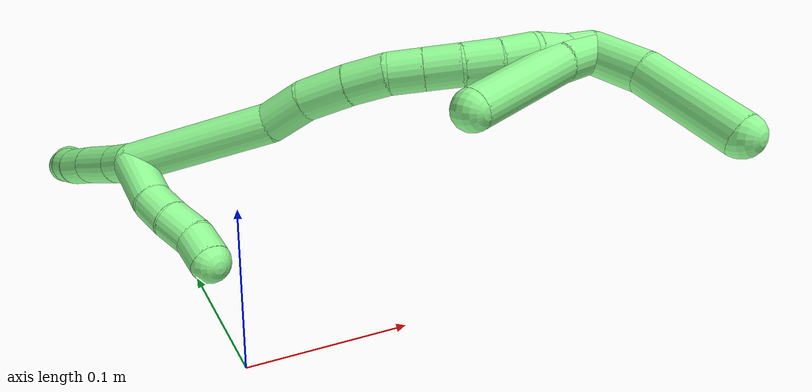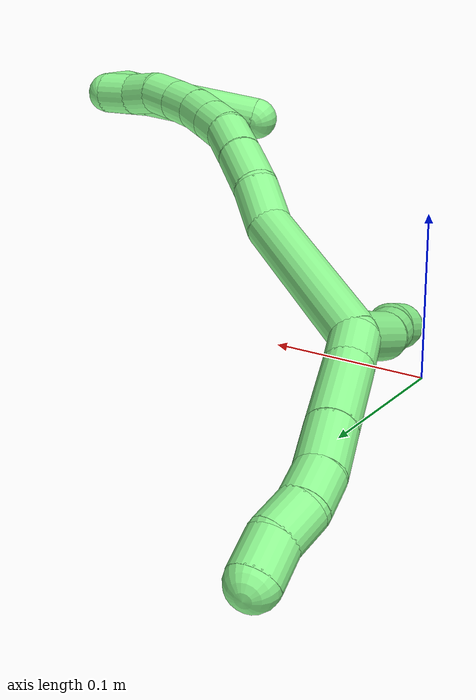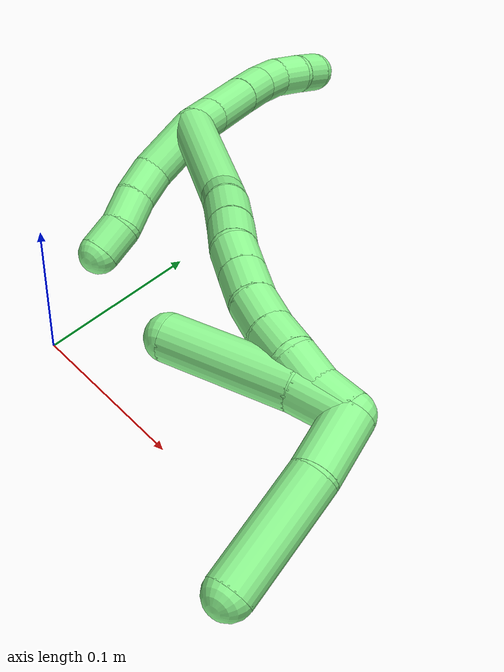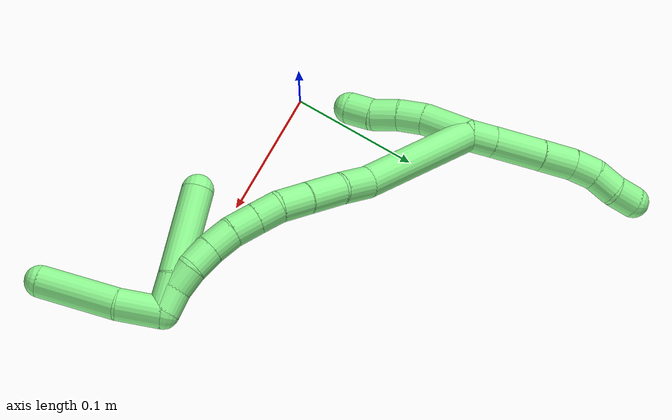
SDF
<sdf version="1.7">
 <world name="default">
  <model name="13">
   <static>0</static>
   <link name="13">
    <collision name="collision-cylinder-e_1_2_8">
     <pose>-0.002612 -0.000916 -0.010062 3.05085 -0.252966 -2.4557</pose>
     <geometry><cylinder><radius>0.0125</radius><length>0.020871</length></cylinder></geometry>
     <surface>
      <friction><ode><mu>1.16</mu><mu2>1.16</mu2><slip1>0</slip1><slip2>0</slip2></ode></friction>
      <contact><ode><kp>1e+06</kp><kd>1</kd><max_vel>0</max_vel><min_depth>0.001</min_depth></ode></contact>
     </surface>
    </collision>
    <visual name="visual-cylinder-e_1_2_8">
     <pose>-0.002612 -0.000916 -0.010062 3.05085 -0.252966 -2.4557</pose>
     <geometry><cylinder><radius>0.0125</radius><length>0.020871</length></cylinder></geometry>
     <material><ambient>0.564706 0.984314 0.572549 1</ambient></material>
    </visual>
    <collision name="collision-cylinder-e_2_8_9">
     <pose>-0.00967 -0.003464 -0.040232 3.06057 -0.216955 -2.429</pose>
     <geometry><cylinder><radius>0.0125</radius><length>0.041319</length></cylinder></geometry>
     <surface>
      <friction><ode><mu>1.16</mu><mu2>1.16</mu2><slip1>0</slip1><slip2>0</slip2></ode></friction>
      <contact><ode><kp>1e+06</kp><kd>1</kd><max_vel>0</max_vel><min_depth>0.001</min_depth></ode></contact>
     </surface>
    </collision>
    <visual name="visual-cylinder-e_2_8_9">
     <pose>-0.00967 -0.003464 -0.040232 3.06057 -0.216955 -2.429</pose>
     <geometry><cylinder><radius>0.0125</radius><length>0.041319</length></cylinder></geometry>
     <material><ambient>0.564706 0.984314 0.572549 1</ambient></material>
    </visual>
    <collision name="collision-cylinder-e_3_9_10">
     <pose>-0.017392 -0.006448 -0.073606 3.04006 -0.240822 -2.34649</pose>
     <geometry><cylinder><radius>0.0125</radius><length>0.027459</length></cylinder></geometry>
     <surface>
      <friction><ode><mu>1.16</mu><mu2>1.16</mu2><slip1>0</slip1><slip2>0</slip2></ode></friction>
      <contact><ode><kp>1e+06</kp><kd>1</kd><max_vel>0</max_vel><min_depth>0.001</min_depth></ode></contact>
     </surface>
    </collision>
    <visual name="visual-cylinder-e_3_9_10">
     <pose>-0.017392 -0.006448 -0.073606 3.04006 -0.240822 -2.34649</pose>
     <geometry><cylinder><radius>0.0125</radius><length>0.027459</length></cylinder></geometry>
     <material><ambient>0.564706 0.984314 0.572549 1</ambient></material>
    </visual>
    <collision name="collision-cylinder-e_4_10_11">
     <pose>-0.021658 -0.009524 -0.096785 2.96935 -0.098235 -1.03521</pose>
     <geometry><cylinder><radius>0.0125</radius><length>0.020224</length></cylinder></geometry>
     <surface>
      <friction><ode><mu>1.16</mu><mu2>1.16</mu2><slip1>0</slip1><slip2>0</slip2></ode></friction>
      <contact><ode><kp>1e+06</kp><kd>1</kd><max_vel>0</max_vel><min_depth>0.001</min_depth></ode></contact>
     </surface>
    </collision>
    <visual name="visual-cylinder-e_4_10_11">
     <pose>-0.021658 -0.009524 -0.096785 2.96935 -0.098235 -1.03521</pose>
     <geometry><cylinder><radius>0.0125</radius><length>0.020224</length></cylinder></geometry>
     <material><ambient>0.564706 0.984314 0.572549 1</ambient></material>
    </visual>
    <collision name="collision-cylinder-e_5_11_12">
     <pose>-0.021896 -0.014965 -0.116014 2.76201 0.075012 0.385805</pose>
     <geometry><cylinder><radius>0.0125</radius><length>0.020115</length></cylinder></geometry>
     <surface>
      <friction><ode><mu>1.16</mu><mu2>1.16</mu2><slip1>0</slip1><slip2>0</slip2></ode></friction>
      <contact><ode><kp>1e+06</kp><kd>1</kd><max_vel>0</max_vel><min_depth>0.001</min_depth></ode></contact>
     </surface>
    </collision>
    <visual name="visual-cylinder-e_5_11_12">
     <pose>-0.021896 -0.014965 -0.116014 2.76201 0.075012 0.385805</pose>
     <geometry><cylinder><radius>0.0125</radius><length>0.020115</length></cylinder></geometry>
     <material><ambient>0.564706 0.984314 0.572549 1</ambient></material>
    </visual>
    <collision name="collision-cylinder-e_6_12_6">
     <pose>-0.023018 -0.022024 -0.134573 2.79462 -0.188539 -0.989522</pose>
     <geometry><cylinder><radius>0.0125</radius><length>0.020012</length></cylinder></geometry>
     <surface>
      <friction><ode><mu>1.16</mu><mu2>1.16</mu2><slip1>0</slip1><slip2>0</slip2></ode></friction>
      <contact><ode><kp>1e+06</kp><kd>1</kd><max_vel>0</max_vel><min_depth>0.001</min_depth></ode></contact>
     </surface>
    </collision>
    <visual name="visual-cylinder-e_6_12_6">
     <pose>-0.023018 -0.022024 -0.134573 2.79462 -0.188539 -0.989522</pose>
     <geometry><cylinder><radius>0.0125</radius><length>0.020012</length></cylinder></geometry>
     <material><ambient>0.564706 0.984314 0.572549 1</ambient></material>
    </visual>
    <collision name="collision-cylinder-e_1_2_13">
     <pose>-0.007535 -0.003783 0.016887 0.220361 -0.410664 -0.046072</pose>
     <geometry><cylinder><radius>0.0125</radius><length>0.037749</length></cylinder></geometry>
     <surface>
      <friction><ode><mu>1.16</mu><mu2>1.16</mu2><slip1>0</slip1><slip2>0</slip2></ode></friction>
      <contact><ode><kp>1e+06</kp><kd>1</kd><max_vel>0</max_vel><min_depth>0.001</min_depth></ode></contact>
     </surface>
    </collision>
    <visual name="visual-cylinder-e_1_2_13">
     <pose>-0.007535 -0.003783 0.016887 0.220361 -0.410664 -0.046072</pose>
     <geometry><cylinder><radius>0.0125</radius><length>0.037749</length></cylinder></geometry>
     <material><ambient>0.564706 0.984314 0.572549 1</ambient></material>
    </visual>
    <collision name="collision-cylinder-e_2_13_14">
     <pose>-0.016968 -0.010614 0.043526 0.303034 -0.183708 -0.028127</pose>
     <geometry><cylinder><radius>0.0125</radius><length>0.020786</length></cylinder></geometry>
     <surface>
      <friction><ode><mu>1.16</mu><mu2>1.16</mu2><slip1>0</slip1><slip2>0</slip2></ode></friction>
      <contact><ode><kp>1e+06</kp><kd>1</kd><max_vel>0</max_vel><min_depth>0.001</min_depth></ode></contact>
     </surface>
    </collision>
    <visual name="visual-cylinder-e_2_13_14">
     <pose>-0.016968 -0.010614 0.043526 0.303034 -0.183708 -0.028127</pose>
     <geometry><cylinder><radius>0.0125</radius><length>0.020786</length></cylinder></geometry>
     <material><ambient>0.564706 0.984314 0.572549 1</ambient></material>
    </visual>
    <collision name="collision-cylinder-e_3_14_15">
     <pose>-0.020162 -0.018042 0.062848 0.429084 -0.122417 -0.026706</pose>
     <geometry><cylinder><radius>0.0125</radius><length>0.021206</length></cylinder></geometry>
     <surface>
      <friction><ode><mu>1.16</mu><mu2>1.16</mu2><slip1>0</slip1><slip2>0</slip2></ode></friction>
      <contact><ode><kp>1e+06</kp><kd>1</kd><max_vel>0</max_vel><min_depth>0.001</min_depth></ode></contact>
     </surface>
    </collision>
    <visual name="visual-cylinder-e_3_14_15">
     <pose>-0.020162 -0.018042 0.062848 0.429084 -0.122417 -0.026706</pose>
     <geometry><cylinder><radius>0.0125</radius><length>0.021206</length></cylinder></geometry>
     <material><ambient>0.564706 0.984314 0.572549 1</ambient></material>
    </visual>
    <collision name="collision-cylinder-e_4_15_5">
     <pose>-0.025033 -0.024976 0.081544 0.273048 -0.360826 -0.050104</pose>
     <geometry><cylinder><radius>0.0125</radius><length>0.020259</length></cylinder></geometry>
     <surface>
      <friction><ode><mu>1.16</mu><mu2>1.16</mu2><slip1>0</slip1><slip2>0</slip2></ode></friction>
      <contact><ode><kp>1e+06</kp><kd>1</kd><max_vel>0</max_vel><min_depth>0.001</min_depth></ode></contact>
     </surface>
    </collision>
    <visual name="visual-cylinder-e_4_15_5">
     <pose>-0.025033 -0.024976 0.081544 0.273048 -0.360826 -0.050104</pose>
     <geometry><cylinder><radius>0.0125</radius><length>0.020259</length></cylinder></geometry>
     <material><ambient>0.564706 0.984314 0.572549 1</ambient></material>
    </visual>
    <collision name="collision-cylinder-e_1_2_16">
     <pose>0.030775 -0.015791 0.032788 0.448837 0.701949 0.166762</pose>
     <geometry><cylinder><radius>0.0125</radius><length>0.09532</length></cylinder></geometry>
     <surface>
      <friction><ode><mu>1.16</mu><mu2>1.16</mu2><slip1>0</slip1><slip2>0</slip2></ode></friction>
      <contact><ode><kp>1e+06</kp><kd>1</kd><max_vel>0</max_vel><min_depth>0.001</min_depth></ode></contact>
     </surface>
    </collision>
    <visual name="visual-cylinder-e_1_2_16">
     <pose>0.030775 -0.015791 0.032788 0.448837 0.701949 0.166762</pose>
     <geometry><cylinder><radius>0.0125</radius><length>0.09532</length></cylinder></geometry>
     <material><ambient>0.564706 0.984314 0.572549 1</ambient></material>
    </visual>
    <collision name="collision-cylinder-e_2_16_17">
     <pose>0.071351 -0.031882 0.075159 0.031177 0.796408 0.013117</pose>
     <geometry><cylinder><radius>0.0125</radius><length>0.027423</length></cylinder></geometry>
     <surface>
      <friction><ode><mu>1.16</mu><mu2>1.16</mu2><slip1>0</slip1><slip2>0</slip2></ode></friction>
      <contact><ode><kp>1e+06</kp><kd>1</kd><max_vel>0</max_vel><min_depth>0.001</min_depth></ode></contact>
     </surface>
    </collision>
    <visual name="visual-cylinder-e_2_16_17">
     <pose>0.071351 -0.031882 0.075159 0.031177 0.796408 0.013117</pose>
     <geometry><cylinder><radius>0.0125</radius><length>0.027423</length></cylinder></geometry>
     <material><ambient>0.564706 0.984314 0.572549 1</ambient></material>
    </visual>
    <collision name="collision-cylinder-e_3_17_18">
     <pose>0.090348 -0.035133 0.095882 0.259107 0.673467 0.091152</pose>
     <geometry><cylinder><radius>0.0125</radius><length>0.029487</length></cylinder></geometry>
     <surface>
      <friction><ode><mu>1.16</mu><mu2>1.16</mu2><slip1>0</slip1><slip2>0</slip2></ode></friction>
      <contact><ode><kp>1e+06</kp><kd>1</kd><max_vel>0</max_vel><min_depth>0.001</min_depth></ode></contact>
     </surface>
    </collision>
    <visual name="visual-cylinder-e_3_17_18">
     <pose>0.090348 -0.035133 0.095882 0.259107 0.673467 0.091152</pose>
     <geometry><cylinder><radius>0.0125</radius><length>0.029487</length></cylinder></geometry>
     <material><ambient>0.564706 0.984314 0.572549 1</ambient></material>
    </visual>
    <collision name="collision-cylinder-e_4_18_19">
     <pose>0.106791 -0.04121 0.116705 0.312058 0.618953 0.100514</pose>
     <geometry><cylinder><radius>0.0125</radius><length>0.024984</length></cylinder></geometry>
     <surface>
      <friction><ode><mu>1.16</mu><mu2>1.16</mu2><slip1>0</slip1><slip2>0</slip2></ode></friction>
      <contact><ode><kp>1e+06</kp><kd>1</kd><max_vel>0</max_vel><min_depth>0.001</min_depth></ode></contact>
     </surface>
    </collision>
    <visual name="visual-cylinder-e_4_18_19">
     <pose>0.106791 -0.04121 0.116705 0.312058 0.618953 0.100514</pose>
     <geometry><cylinder><radius>0.0125</radius><length>0.024984</length></cylinder></geometry>
     <material><ambient>0.564706 0.984314 0.572549 1</ambient></material>
    </visual>
    <collision name="collision-cylinder-e_5_19_20">
     <pose>0.119595 -0.049136 0.133275 0.608931 0.58463 0.188569</pose>
     <geometry><cylinder><radius>0.0125</radius><length>0.020135</length></cylinder></geometry>
     <surface>
      <friction><ode><mu>1.16</mu><mu2>1.16</mu2><slip1>0</slip1><slip2>0</slip2></ode></friction>
      <contact><ode><kp>1e+06</kp><kd>1</kd><max_vel>0</max_vel><min_depth>0.001</min_depth></ode></contact>
     </surface>
    </collision>
    <visual name="visual-cylinder-e_5_19_20">
     <pose>0.119595 -0.049136 0.133275 0.608931 0.58463 0.188569</pose>
     <geometry><cylinder><radius>0.0125</radius><length>0.020135</length></cylinder></geometry>
     <material><ambient>0.564706 0.984314 0.572549 1</ambient></material>
    </visual>
    <collision name="collision-cylinder-e_6_20_21">
     <pose>0.131047 -0.059131 0.147369 0.624412 0.585946 0.194113</pose>
     <geometry><cylinder><radius>0.0125</radius><length>0.021323</length></cylinder></geometry>
     <surface>
      <friction><ode><mu>1.16</mu><mu2>1.16</mu2><slip1>0</slip1><slip2>0</slip2></ode></friction>
      <contact><ode><kp>1e+06</kp><kd>1</kd><max_vel>0</max_vel><min_depth>0.001</min_depth></ode></contact>
     </surface>
    </collision>
    <visual name="visual-cylinder-e_6_20_21">
     <pose>0.131047 -0.059131 0.147369 0.624412 0.585946 0.194113</pose>
     <geometry><cylinder><radius>0.0125</radius><length>0.021323</length></cylinder></geometry>
     <material><ambient>0.564706 0.984314 0.572549 1</ambient></material>
    </visual>
    <collision name="collision-cylinder-e_7_21_22">
     <pose>0.14334 -0.070496 0.160372 0.816701 0.647086 0.288161</pose>
     <geometry><cylinder><radius>0.0125</radius><length>0.021224</length></cylinder></geometry>
     <surface>
      <friction><ode><mu>1.16</mu><mu2>1.16</mu2><slip1>0</slip1><slip2>0</slip2></ode></friction>
      <contact><ode><kp>1e+06</kp><kd>1</kd><max_vel>0</max_vel><min_depth>0.001</min_depth></ode></contact>
     </surface>
    </collision>
    <visual name="visual-cylinder-e_7_21_22">
     <pose>0.14334 -0.070496 0.160372 0.816701 0.647086 0.288161</pose>
     <geometry><cylinder><radius>0.0125</radius><length>0.021224</length></cylinder></geometry>
     <material><ambient>0.564706 0.984314 0.572549 1</ambient></material>
    </visual>
    <collision name="collision-cylinder-e_8_22_23">
     <pose>0.156319 -0.082739 0.1707 0.929728 0.715205 0.370508</pose>
     <geometry><cylinder><radius>0.0125</radius><length>0.020071</length></cylinder></geometry>
     <surface>
      <friction><ode><mu>1.16</mu><mu2>1.16</mu2><slip1>0</slip1><slip2>0</slip2></ode></friction>
      <contact><ode><kp>1e+06</kp><kd>1</kd><max_vel>0</max_vel><min_depth>0.001</min_depth></ode></contact>
     </surface>
    </collision>
    <visual name="visual-cylinder-e_8_22_23">
     <pose>0.156319 -0.082739 0.1707 0.929728 0.715205 0.370508</pose>
     <geometry><cylinder><radius>0.0125</radius><length>0.020071</length></cylinder></geometry>
     <material><ambient>0.564706 0.984314 0.572549 1</ambient></material>
    </visual>
    <collision name="collision-cylinder-e_9_23_24">
     <pose>0.167815 -0.096914 0.178444 1.19332 0.513505 0.352957</pose>
     <geometry><cylinder><radius>0.0125</radius><length>0.020013</length></cylinder></geometry>
     <surface>
      <friction><ode><mu>1.16</mu><mu2>1.16</mu2><slip1>0</slip1><slip2>0</slip2></ode></friction>
      <contact><ode><kp>1e+06</kp><kd>1</kd><max_vel>0</max_vel><min_depth>0.001</min_depth></ode></contact>
     </surface>
    </collision>
    <visual name="visual-cylinder-e_9_23_24">
     <pose>0.167815 -0.096914 0.178444 1.19332 0.513505 0.352957</pose>
     <geometry><cylinder><radius>0.0125</radius><length>0.020013</length></cylinder></geometry>
     <material><ambient>0.564706 0.984314 0.572549 1</ambient></material>
    </visual>
    <collision name="collision-cylinder-e_10_24_1">
     <pose>0.179118 -0.112572 0.183177 1.37222 0.691987 0.574056</pose>
     <geometry><cylinder><radius>0.0125</radius><length>0.020019</length></cylinder></geometry>
     <surface>
      <friction><ode><mu>1.16</mu><mu2>1.16</mu2><slip1>0</slip1><slip2>0</slip2></ode></friction>
      <contact><ode><kp>1e+06</kp><kd>1</kd><max_vel>0</max_vel><min_depth>0.001</min_depth></ode></contact>
     </surface>
    </collision>
    <visual name="visual-cylinder-e_10_24_1">
     <pose>0.179118 -0.112572 0.183177 1.37222 0.691987 0.574056</pose>
     <geometry><cylinder><radius>0.0125</radius><length>0.020019</length></cylinder></geometry>
     <material><ambient>0.564706 0.984314 0.572549 1</ambient></material>
    </visual>
    <collision name="collision-cylinder-e_1_1_25">
     <pose>0.183615 -0.124104 0.201735 0.229271 -0.107551 -0.012395</pose>
     <geometry><cylinder><radius>0.0125</radius><length>0.035196</length></cylinder></geometry>
     <surface>
      <friction><ode><mu>1.16</mu><mu2>1.16</mu2><slip1>0</slip1><slip2>0</slip2></ode></friction>
      <contact><ode><kp>1e+06</kp><kd>1</kd><max_vel>0</max_vel><min_depth>0.001</min_depth></ode></contact>
     </surface>
    </collision>
    <visual name="visual-cylinder-e_1_1_25">
     <pose>0.183615 -0.124104 0.201735 0.229271 -0.107551 -0.012395</pose>
     <geometry><cylinder><radius>0.0125</radius><length>0.035196</length></cylinder></geometry>
     <material><ambient>0.564706 0.984314 0.572549 1</ambient></material>
    </visual>
    <collision name="collision-cylinder-e_2_25_4">
     <pose>0.172233 -0.135575 0.248834 0.244336 -0.297353 -0.036776</pose>
     <geometry><cylinder><radius>0.0125</radius><length>0.064804</length></cylinder></geometry>
     <surface>
      <friction><ode><mu>1.16</mu><mu2>1.16</mu2><slip1>0</slip1><slip2>0</slip2></ode></friction>
      <contact><ode><kp>1e+06</kp><kd>1</kd><max_vel>0</max_vel><min_depth>0.001</min_depth></ode></contact>
     </surface>
    </collision>
    <visual name="visual-cylinder-e_2_25_4">
     <pose>0.172233 -0.135575 0.248834 0.244336 -0.297353 -0.036776</pose>
     <geometry><cylinder><radius>0.0125</radius><length>0.064804</length></cylinder></geometry>
     <material><ambient>0.564706 0.984314 0.572549 1</ambient></material>
    </visual>
    <collision name="collision-cylinder-e_1_1_26">
     <pose>0.175368 -0.109945 0.184984 -1.54263 -0.782927 0.763253</pose>
     <geometry><cylinder><radius>0.0125</radius><length>0.028742</length></cylinder></geometry>
     <surface>
      <friction><ode><mu>1.16</mu><mu2>1.16</mu2><slip1>0</slip1><slip2>0</slip2></ode></friction>
      <contact><ode><kp>1e+06</kp><kd>1</kd><max_vel>0</max_vel><min_depth>0.001</min_depth></ode></contact>
     </surface>
    </collision>
    <visual name="visual-cylinder-e_1_1_26">
     <pose>0.175368 -0.109945 0.184984 -1.54263 -0.782927 0.763253</pose>
     <geometry><cylinder><radius>0.0125</radius><length>0.028742</length></cylinder></geometry>
     <material><ambient>0.564706 0.984314 0.572549 1</ambient></material>
    </visual>
    <collision name="collision-cylinder-e_2_26_3">
     <pose>0.137099 -0.077932 0.18649 -1.51502 -0.910136 0.866832</pose>
     <geometry><cylinder><radius>0.0125</radius><length>0.071258</length></cylinder></geometry>
     <surface>
      <friction><ode><mu>1.16</mu><mu2>1.16</mu2><slip1>0</slip1><slip2>0</slip2></ode></friction>
      <contact><ode><kp>1e+06</kp><kd>1</kd><max_vel>0</max_vel><min_depth>0.001</min_depth></ode></contact>
     </surface>
    </collision>
    <visual name="visual-cylinder-e_2_26_3">
     <pose>0.137099 -0.077932 0.18649 -1.51502 -0.910136 0.866832</pose>
     <geometry><cylinder><radius>0.0125</radius><length>0.071258</length></cylinder></geometry>
     <material><ambient>0.564706 0.984314 0.572549 1</ambient></material>
    </visual>
    <collision name="collision-sphere-3">
     <pose>0.108967 -0.056103 0.187709 0 -0 0</pose>
     <geometry><sphere><radius>0.0125</radius></sphere></geometry>
     <surface>
      <friction><ode><mu>1.16</mu><mu2>1.16</mu2><slip1>0</slip1><slip2>0</slip2></ode></friction>
      <contact><ode><kp>1e+06</kp><kd>1</kd><max_vel>0</max_vel><min_depth>0.001</min_depth></ode></contact>
     </surface>
    </collision>
    <visual name="visual-sphere-3">
     <pose>0.108967 -0.056103 0.187709 0 -0 0</pose>
     <geometry><sphere><radius>0.0125</radius></sphere></geometry>
     <material><ambient>0.564706 0.984314 0.572549 1</ambient></material>
    </visual>
    <collision name="collision-sphere-26">
     <pose>0.165231 -0.099762 0.185271 0 -0 0</pose>
     <geometry><sphere><radius>0.0125</radius></sphere></geometry>
     <surface>
      <friction><ode><mu>1.16</mu><mu2>1.16</mu2><slip1>0</slip1><slip2>0</slip2></ode></friction>
      <contact><ode><kp>1e+06</kp><kd>1</kd><max_vel>0</max_vel><min_depth>0.001</min_depth></ode></contact>
     </surface>
    </collision>
    <visual name="visual-sphere-26">
     <pose>0.165231 -0.099762 0.185271 0 -0 0</pose>
     <geometry><sphere><radius>0.0125</radius></sphere></geometry>
     <material><ambient>0.564706 0.984314 0.572549 1</ambient></material>
    </visual>
    <collision name="collision-sphere-4">
     <pose>0.162739 -0.143069 0.278894 0 -0 0</pose>
     <geometry><sphere><radius>0.0125</radius></sphere></geometry>
     <surface>
      <friction><ode><mu>1.16</mu><mu2>1.16</mu2><slip1>0</slip1><slip2>0</slip2></ode></friction>
      <contact><ode><kp>1e+06</kp><kd>1</kd><max_vel>0</max_vel><min_depth>0.001</min_depth></ode></contact>
     </surface>
    </collision>
    <visual name="visual-sphere-4">
     <pose>0.162739 -0.143069 0.278894 0 -0 0</pose>
     <geometry><sphere><radius>0.0125</radius></sphere></geometry>
     <material><ambient>0.564706 0.984314 0.572549 1</ambient></material>
    </visual>
    <collision name="collision-sphere-25">
     <pose>0.181726 -0.12808 0.218774 0 -0 0</pose>
     <geometry><sphere><radius>0.0125</radius></sphere></geometry>
     <surface>
      <friction><ode><mu>1.16</mu><mu2>1.16</mu2><slip1>0</slip1><slip2>0</slip2></ode></friction>
      <contact><ode><kp>1e+06</kp><kd>1</kd><max_vel>0</max_vel><min_depth>0.001</min_depth></ode></contact>
     </surface>
    </collision>
    <visual name="visual-sphere-25">
     <pose>0.181726 -0.12808 0.218774 0 -0 0</pose>
     <geometry><sphere><radius>0.0125</radius></sphere></geometry>
     <material><ambient>0.564706 0.984314 0.572549 1</ambient></material>
    </visual>
    <collision name="collision-sphere-1">
     <pose>0.185504 -0.120128 0.184697 0 -0 0</pose>
     <geometry><sphere><radius>0.0125</radius></sphere></geometry>
     <surface>
      <friction><ode><mu>1.16</mu><mu2>1.16</mu2><slip1>0</slip1><slip2>0</slip2></ode></friction>
      <contact><ode><kp>1e+06</kp><kd>1</kd><max_vel>0</max_vel><min_depth>0.001</min_depth></ode></contact>
     </surface>
    </collision>
    <visual name="visual-sphere-1">
     <pose>0.185504 -0.120128 0.184697 0 -0 0</pose>
     <geometry><sphere><radius>0.0125</radius></sphere></geometry>
     <material><ambient>0.564706 0.984314 0.572549 1</ambient></material>
    </visual>
    <collision name="collision-sphere-24">
     <pose>0.172731 -0.105016 0.181656 0 -0 0</pose>
     <geometry><sphere><radius>0.0125</radius></sphere></geometry>
     <surface>
      <friction><ode><mu>1.16</mu><mu2>1.16</mu2><slip1>0</slip1><slip2>0</slip2></ode></friction>
      <contact><ode><kp>1e+06</kp><kd>1</kd><max_vel>0</max_vel><min_depth>0.001</min_depth></ode></contact>
     </surface>
    </collision>
    <visual name="visual-sphere-24">
     <pose>0.172731 -0.105016 0.181656 0 -0 0</pose>
     <geometry><sphere><radius>0.0125</radius></sphere></geometry>
     <material><ambient>0.564706 0.984314 0.572549 1</ambient></material>
    </visual>
    <collision name="collision-sphere-23">
     <pose>0.1629 -0.088812 0.175231 0 -0 0</pose>
     <geometry><sphere><radius>0.0125</radius></sphere></geometry>
     <surface>
      <friction><ode><mu>1.16</mu><mu2>1.16</mu2><slip1>0</slip1><slip2>0</slip2></ode></friction>
      <contact><ode><kp>1e+06</kp><kd>1</kd><max_vel>0</max_vel><min_depth>0.001</min_depth></ode></contact>
     </surface>
    </collision>
    <visual name="visual-sphere-23">
     <pose>0.1629 -0.088812 0.175231 0 -0 0</pose>
     <geometry><sphere><radius>0.0125</radius></sphere></geometry>
     <material><ambient>0.564706 0.984314 0.572549 1</ambient></material>
    </visual>
    <collision name="collision-sphere-22">
     <pose>0.149738 -0.076667 0.166169 0 -0 0</pose>
     <geometry><sphere><radius>0.0125</radius></sphere></geometry>
     <surface>
      <friction><ode><mu>1.16</mu><mu2>1.16</mu2><slip1>0</slip1><slip2>0</slip2></ode></friction>
      <contact><ode><kp>1e+06</kp><kd>1</kd><max_vel>0</max_vel><min_depth>0.001</min_depth></ode></contact>
     </surface>
    </collision>
    <visual name="visual-sphere-22">
     <pose>0.149738 -0.076667 0.166169 0 -0 0</pose>
     <geometry><sphere><radius>0.0125</radius></sphere></geometry>
     <material><ambient>0.564706 0.984314 0.572549 1</ambient></material>
    </visual>
    <collision name="collision-sphere-21">
     <pose>0.136943 -0.064325 0.154576 0 -0 0</pose>
     <geometry><sphere><radius>0.0125</radius></sphere></geometry>
     <surface>
      <friction><ode><mu>1.16</mu><mu2>1.16</mu2><slip1>0</slip1><slip2>0</slip2></ode></friction>
      <contact><ode><kp>1e+06</kp><kd>1</kd><max_vel>0</max_vel><min_depth>0.001</min_depth></ode></contact>
     </surface>
    </collision>
    <visual name="visual-sphere-21">
     <pose>0.136943 -0.064325 0.154576 0 -0 0</pose>
     <geometry><sphere><radius>0.0125</radius></sphere></geometry>
     <material><ambient>0.564706 0.984314 0.572549 1</ambient></material>
    </visual>
    <collision name="collision-sphere-12">
     <pose>-0.021143 -0.018681 -0.12533 0 -0 0</pose>
     <geometry><sphere><radius>0.0125</radius></sphere></geometry>
     <surface>
      <friction><ode><mu>1.16</mu><mu2>1.16</mu2><slip1>0</slip1><slip2>0</slip2></ode></friction>
      <contact><ode><kp>1e+06</kp><kd>1</kd><max_vel>0</max_vel><min_depth>0.001</min_depth></ode></contact>
     </surface>
    </collision>
    <visual name="visual-sphere-12">
     <pose>-0.021143 -0.018681 -0.12533 0 -0 0</pose>
     <geometry><sphere><radius>0.0125</radius></sphere></geometry>
     <material><ambient>0.564706 0.984314 0.572549 1</ambient></material>
    </visual>
    <collision name="collision-sphere-11">
     <pose>-0.02265 -0.011249 -0.106699 0 -0 0</pose>
     <geometry><sphere><radius>0.0125</radius></sphere></geometry>
     <surface>
      <friction><ode><mu>1.16</mu><mu2>1.16</mu2><slip1>0</slip1><slip2>0</slip2></ode></friction>
      <contact><ode><kp>1e+06</kp><kd>1</kd><max_vel>0</max_vel><min_depth>0.001</min_depth></ode></contact>
     </surface>
    </collision>
    <visual name="visual-sphere-11">
     <pose>-0.02265 -0.011249 -0.106699 0 -0 0</pose>
     <geometry><sphere><radius>0.0125</radius></sphere></geometry>
     <material><ambient>0.564706 0.984314 0.572549 1</ambient></material>
    </visual>
    <collision name="collision-sphere-10">
     <pose>-0.020667 -0.0078 -0.08687 0 -0 0</pose>
     <geometry><sphere><radius>0.0125</radius></sphere></geometry>
     <surface>
      <friction><ode><mu>1.16</mu><mu2>1.16</mu2><slip1>0</slip1><slip2>0</slip2></ode></friction>
      <contact><ode><kp>1e+06</kp><kd>1</kd><max_vel>0</max_vel><min_depth>0.001</min_depth></ode></contact>
     </surface>
    </collision>
    <visual name="visual-sphere-10">
     <pose>-0.020667 -0.0078 -0.08687 0 -0 0</pose>
     <geometry><sphere><radius>0.0125</radius></sphere></geometry>
     <material><ambient>0.564706 0.984314 0.572549 1</ambient></material>
    </visual>
    <collision name="collision-sphere-9">
     <pose>-0.014118 -0.005097 -0.060341 0 -0 0</pose>
     <geometry><sphere><radius>0.0125</radius></sphere></geometry>
     <surface>
      <friction><ode><mu>1.16</mu><mu2>1.16</mu2><slip1>0</slip1><slip2>0</slip2></ode></friction>
      <contact><ode><kp>1e+06</kp><kd>1</kd><max_vel>0</max_vel><min_depth>0.001</min_depth></ode></contact>
     </surface>
    </collision>
    <visual name="visual-sphere-9">
     <pose>-0.014118 -0.005097 -0.060341 0 -0 0</pose>
     <geometry><sphere><radius>0.0125</radius></sphere></geometry>
     <material><ambient>0.564706 0.984314 0.572549 1</ambient></material>
    </visual>
    <collision name="collision-sphere-2">
     <geometry><sphere><radius>0.0125</radius></sphere></geometry>
     <surface>
      <friction><ode><mu>1.16</mu><mu2>1.16</mu2><slip1>0</slip1><slip2>0</slip2></ode></friction>
      <contact><ode><kp>1e+06</kp><kd>1</kd><max_vel>0</max_vel><min_depth>0.001</min_depth></ode></contact>
     </surface>
    </collision>
    <visual name="visual-sphere-2">
     <geometry><sphere><radius>0.0125</radius></sphere></geometry>
     <material><ambient>0.564706 0.984314 0.572549 1</ambient></material>
    </visual>
    <collision name="collision-sphere-19">
     <pose>0.114039 -0.044334 0.126389 0 -0 0</pose>
     <geometry><sphere><radius>0.0125</radius></sphere></geometry>
     <surface>
      <friction><ode><mu>1.16</mu><mu2>1.16</mu2><slip1>0</slip1><slip2>0</slip2></ode></friction>
      <contact><ode><kp>1e+06</kp><kd>1</kd><max_vel>0</max_vel><min_depth>0.001</min_depth></ode></contact>
     </surface>
    </collision>
    <visual name="visual-sphere-19">
     <pose>0.114039 -0.044334 0.126389 0 -0 0</pose>
     <geometry><sphere><radius>0.0125</radius></sphere></geometry>
     <material><ambient>0.564706 0.984314 0.572549 1</ambient></material>
    </visual>
    <collision name="collision-sphere-8">
     <pose>-0.005223 -0.001831 -0.020123 0 -0 0</pose>
     <geometry><sphere><radius>0.0125</radius></sphere></geometry>
     <surface>
      <friction><ode><mu>1.16</mu><mu2>1.16</mu2><slip1>0</slip1><slip2>0</slip2></ode></friction>
      <contact><ode><kp>1e+06</kp><kd>1</kd><max_vel>0</max_vel><min_depth>0.001</min_depth></ode></contact>
     </surface>
    </collision>
    <visual name="visual-sphere-8">
     <pose>-0.005223 -0.001831 -0.020123 0 -0 0</pose>
     <geometry><sphere><radius>0.0125</radius></sphere></geometry>
     <material><ambient>0.564706 0.984314 0.572549 1</ambient></material>
    </visual>
    <collision name="collision-sphere-6">
     <pose>-0.024893 -0.025366 -0.143816 0 -0 0</pose>
     <geometry><sphere><radius>0.0125</radius></sphere></geometry>
     <surface>
      <friction><ode><mu>1.16</mu><mu2>1.16</mu2><slip1>0</slip1><slip2>0</slip2></ode></friction>
      <contact><ode><kp>1e+06</kp><kd>1</kd><max_vel>0</max_vel><min_depth>0.001</min_depth></ode></contact>
     </surface>
    </collision>
    <visual name="visual-sphere-6">
     <pose>-0.024893 -0.025366 -0.143816 0 -0 0</pose>
     <geometry><sphere><radius>0.0125</radius></sphere></geometry>
     <material><ambient>0.564706 0.984314 0.572549 1</ambient></material>
    </visual>
    <collision name="collision-sphere-13">
     <pose>-0.01507 -0.007565 0.033773 0 -0 0</pose>
     <geometry><sphere><radius>0.0125</radius></sphere></geometry>
     <surface>
      <friction><ode><mu>1.16</mu><mu2>1.16</mu2><slip1>0</slip1><slip2>0</slip2></ode></friction>
      <contact><ode><kp>1e+06</kp><kd>1</kd><max_vel>0</max_vel><min_depth>0.001</min_depth></ode></contact>
     </surface>
    </collision>
    <visual name="visual-sphere-13">
     <pose>-0.01507 -0.007565 0.033773 0 -0 0</pose>
     <geometry><sphere><radius>0.0125</radius></sphere></geometry>
     <material><ambient>0.564706 0.984314 0.572549 1</ambient></material>
    </visual>
    <collision name="collision-sphere-14">
     <pose>-0.018867 -0.013664 0.053278 0 -0 0</pose>
     <geometry><sphere><radius>0.0125</radius></sphere></geometry>
     <surface>
      <friction><ode><mu>1.16</mu><mu2>1.16</mu2><slip1>0</slip1><slip2>0</slip2></ode></friction>
      <contact><ode><kp>1e+06</kp><kd>1</kd><max_vel>0</max_vel><min_depth>0.001</min_depth></ode></contact>
     </surface>
    </collision>
    <visual name="visual-sphere-14">
     <pose>-0.018867 -0.013664 0.053278 0 -0 0</pose>
     <geometry><sphere><radius>0.0125</radius></sphere></geometry>
     <material><ambient>0.564706 0.984314 0.572549 1</ambient></material>
    </visual>
    <collision name="collision-sphere-15">
     <pose>-0.021457 -0.02242 0.072418 0 -0 0</pose>
     <geometry><sphere><radius>0.0125</radius></sphere></geometry>
     <surface>
      <friction><ode><mu>1.16</mu><mu2>1.16</mu2><slip1>0</slip1><slip2>0</slip2></ode></friction>
      <contact><ode><kp>1e+06</kp><kd>1</kd><max_vel>0</max_vel><min_depth>0.001</min_depth></ode></contact>
     </surface>
    </collision>
    <visual name="visual-sphere-15">
     <pose>-0.021457 -0.02242 0.072418 0 -0 0</pose>
     <geometry><sphere><radius>0.0125</radius></sphere></geometry>
     <material><ambient>0.564706 0.984314 0.572549 1</ambient></material>
    </visual>
    <collision name="collision-sphere-5">
     <pose>-0.028609 -0.027532 0.09067 0 -0 0</pose>
     <geometry><sphere><radius>0.0125</radius></sphere></geometry>
     <surface>
      <friction><ode><mu>1.16</mu><mu2>1.16</mu2><slip1>0</slip1><slip2>0</slip2></ode></friction>
      <contact><ode><kp>1e+06</kp><kd>1</kd><max_vel>0</max_vel><min_depth>0.001</min_depth></ode></contact>
     </surface>
    </collision>
    <visual name="visual-sphere-5">
     <pose>-0.028609 -0.027532 0.09067 0 -0 0</pose>
     <geometry><sphere><radius>0.0125</radius></sphere></geometry>
     <material><ambient>0.564706 0.984314 0.572549 1</ambient></material>
    </visual>
    <collision name="collision-sphere-16">
     <pose>0.061549 -0.031583 0.065576 0 -0 0</pose>
     <geometry><sphere><radius>0.0125</radius></sphere></geometry>
     <surface>
      <friction><ode><mu>1.16</mu><mu2>1.16</mu2><slip1>0</slip1><slip2>0</slip2></ode></friction>
      <contact><ode><kp>1e+06</kp><kd>1</kd><max_vel>0</max_vel><min_depth>0.001</min_depth></ode></contact>
     </surface>
    </collision>
    <visual name="visual-sphere-16">
     <pose>0.061549 -0.031583 0.065576 0 -0 0</pose>
     <geometry><sphere><radius>0.0125</radius></sphere></geometry>
     <material><ambient>0.564706 0.984314 0.572549 1</ambient></material>
    </visual>
    <collision name="collision-sphere-17">
     <pose>0.081152 -0.032181 0.084743 0 -0 0</pose>
     <geometry><sphere><radius>0.0125</radius></sphere></geometry>
     <surface>
      <friction><ode><mu>1.16</mu><mu2>1.16</mu2><slip1>0</slip1><slip2>0</slip2></ode></friction>
      <contact><ode><kp>1e+06</kp><kd>1</kd><max_vel>0</max_vel><min_depth>0.001</min_depth></ode></contact>
     </surface>
    </collision>
    <visual name="visual-sphere-17">
     <pose>0.081152 -0.032181 0.084743 0 -0 0</pose>
     <geometry><sphere><radius>0.0125</radius></sphere></geometry>
     <material><ambient>0.564706 0.984314 0.572549 1</ambient></material>
    </visual>
    <collision name="collision-sphere-18">
     <pose>0.099543 -0.038086 0.107022 0 -0 0</pose>
     <geometry><sphere><radius>0.0125</radius></sphere></geometry>
     <surface>
      <friction><ode><mu>1.16</mu><mu2>1.16</mu2><slip1>0</slip1><slip2>0</slip2></ode></friction>
      <contact><ode><kp>1e+06</kp><kd>1</kd><max_vel>0</max_vel><min_depth>0.001</min_depth></ode></contact>
     </surface>
    </collision>
    <visual name="visual-sphere-18">
     <pose>0.099543 -0.038086 0.107022 0 -0 0</pose>
     <geometry><sphere><radius>0.0125</radius></sphere></geometry>
     <material><ambient>0.564706 0.984314 0.572549 1</ambient></material>
    </visual>
    <collision name="collision-sphere-20">
     <pose>0.125151 -0.053938 0.140162 0 -0 0</pose>
     <geometry><sphere><radius>0.0125</radius></sphere></geometry>
     <surface>
      <friction><ode><mu>1.16</mu><mu2>1.16</mu2><slip1>0</slip1><slip2>0</slip2></ode></friction>
      <contact><ode><kp>1e+06</kp><kd>1</kd><max_vel>0</max_vel><min_depth>0.001</min_depth></ode></contact>
     </surface>
    </collision>
    <visual name="visual-sphere-20">
     <pose>0.125151 -0.053938 0.140162 0 -0 0</pose>
     <geometry><sphere><radius>0.0125</radius></sphere></geometry>
     <material><ambient>0.564706 0.984314 0.572549 1</ambient></material>
    </visual>
    <inertial>
     <pose>0.076186 -0.051251 0.088406 0 -0 0</pose>
     <mass>0.75</mass>
     <inertia>
      <ixx>0.000139</ixx>
      <ixy>0</ixy>
      <ixz>0</ixz>
      <iyy>0.000162</iyy>
      <iyz>0</iyz>
      <izz>2.2e-05</izz>
     </inertia>
    </inertial>
   </link>
   <pose>-0.027014 0.13505 0.073628 1.3725 -0.80359 0.370324</pose>
  </model>
 </world>
</sdf>
